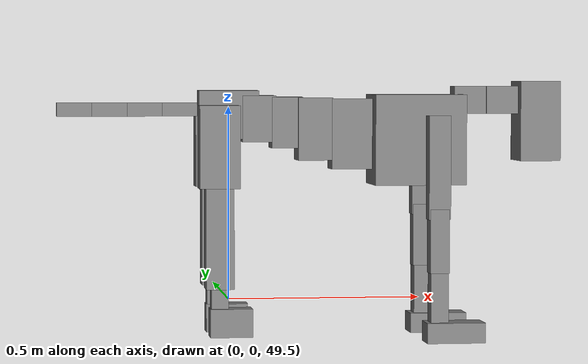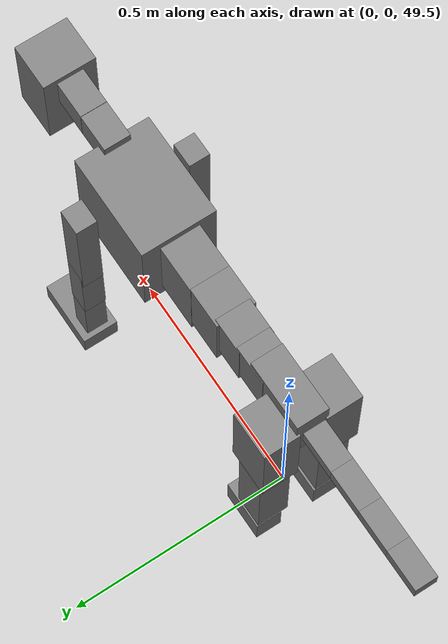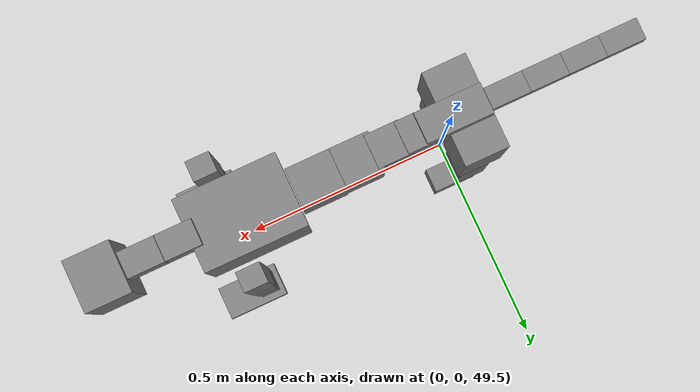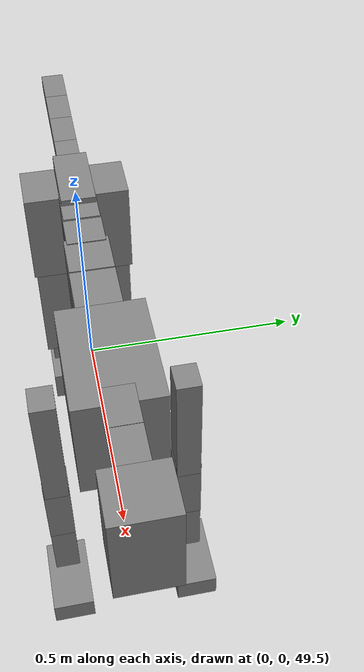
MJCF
<mujoco model="dog">

    <default>
        <joint armature="0.02" stiffness="1" damping="0.2" limited="true"/>
        <geom condim="3" friction="1 0.05 0.05" margin="0.01"/>
        <motor ctrllimited="true" ctrlrange="-1.0 1.0" forcelimited="true" gear="50"/>
    </default>

    <compiler inertiafromgeom="true" angle="radian"/>

    <option timestep="0.016" iterations="50" tolerance="1e-10" solver="Newton" jacobian="dense" cone="pyramidal"/>

    <size nconmax="20000" njmax="60000" nstack="5000000"/>
    <visual>
        <map force="0.1" zfar="30"/>
        <rgba haze="0.15 0.25 0.35 1"/>
        <quality shadowsize="2048"/>
        <global offwidth="800" offheight="800"/>
    </visual>

    <asset>
        <texture type="skybox" builtin="gradient" rgb1="0.3 0.5 0.7" rgb2="0 0 0" width="512" height="512"/>
        <texture name="texplane" type="2d" builtin="checker" rgb1=".2 .3 .4" rgb2=".1 0.15 0.2" width="512" height="512"
                 mark="cross" markrgb=".8 .8 .8"/>
        <texture name="texgeom" type="cube" builtin="flat" mark="cross" width="127" height="1278" rgb1="0.8 0.6 0.4"
                 rgb2="0.8 0.6 0.4" markrgb="1 1 1" random="0.01"/>

        <material name="matplane" reflectance="0.3" texture="texplane" texrepeat="1 1" texuniform="true"/>
        <material name="matgeom" texture="texgeom" texuniform="true" rgba="0.8 0.6 .4 1"/>
    </asset>

    <worldbody>
        <geom name="floor" pos="0 0 0" size="0 0 .25" type="plane" material="matplane" condim="3"/>

        <light directional="false" diffuse=".2 .2 .2" specular="0 0 0" pos="0 0 5" dir="0 0 -1" castshadow="false"/>
        <light mode="targetbodycom" target="torso" directional="false" diffuse=".8 .8 .8" specular="0.3 0.3 0.3"
               pos="0 0 4.0" dir="0 0 -1"/>

        <body name="root" pos="0 0 50">
            <freejoint name="root_1"/>
            <geom type="box" pos="0 0 -0.02" size="0.0774  0.0358  0.063" density="2030"/>

            <body name="spine1" pos="0.054 0 0">
                <joint name="spine1_y" axis="0 1 0" range="0 0.7" limited="true"/>
                <geom type="box" pos="0.02375 0 -0.03" size="0.04375  0.0375  0.05985" density="2030"/>

                <body name="spine2" pos="0.0612 0 0">
                    <joint name="spine2_y" axis="0 1 0" range="-0.15 0.15" limited="true"/>
                    <geom type="box" pos="0.03555  0  -0.04" size="0.04055  0.039  0.06615" density="2030"/>

                    <body name="spine3" pos="0.0730 0 0">
                        <joint name="spine3_y" axis="0 1 0" range="-0.15 0.15" limited="true"/>
                        <geom type="box" pos="0.03555  0  -0.057" size="0.04555  0.0445  0.081" density="2030"/>

                        <body name="spine4" pos="0.0780 0 0">
                            <joint name="spine4_y" axis="0 1 0" range="-0.15 0.15" limited="true"/>
                            <geom type="box" pos="0.05265  0  -0.07" size="0.05265  0.045  0.09135" density="2030"/>

                            <body name="torso" pos="0.1082 0 0">
                                <joint name="torso_y" axis="0 1 0" range="-0.15 0.15" limited="true"/>
                                <geom type="box" pos="0.11925  0  -0.085" size="0.11925  0.085  0.11745"
                                      density="2030"/>

                                <body name="neck1" pos="0.2160  0   0.0180">
                                    <joint name="neck1_y" axis="0 1 0" range="-1.2  -1" limited="true"/>
                                    <geom type="box" pos="0.0423  0  0" size="0.0423  0.03  0.036" density="2325"/>

                                    <body name="neck2" pos="0.0853  0  0">
                                        <joint name="neck2_y" axis="0 1 0" range="0.1  0" limited="true"/>
                                        <geom type="box" pos="0.0423  0  0" size="0.0423  0.03  0.036" density="2325"/>

                                        <body name="head" pos="0.0853  0  0">
                                            <joint name="head_y" axis="0 1 0" range="-0.3  -0.2" limited="true"/>
                                            <geom type="box" pos="0.0531  0  -0.055" size="0.0531  0.06  0.1044"
                                                  density="4030"/>

                                        </body>
                                    </body>
                                </body>

                                <body name="front_shoulder" pos="0.156  0   -0.0480">
                                    <joint name="front_shoulder_y" axis="0 1 0" range="-1 1.5" limited="true"/>
                                    <geom type="box" pos="0 0.13 -0.1067" size="0.0280  0.0239  0.1334" density="1158"/>
                                    <geom type="box" pos="0 -0.13 -0.1067" size="0.0280  0.0239  0.1334"
                                          density="1158"/>

                                    <body name="front_elbow" pos="0  0  -0.2135">
                                        <joint name="front_elbow_y" axis="0 1 0" range="-2 0" limited="true"/>
                                        <geom type="box" pos="0 0.13 -0.0821" size="0.0248  0.0253  0.0821"
                                              density="1081"/>
                                        <geom type="box" pos="0 -0.13 -0.0821" size="0.0248  0.0253  0.0821"
                                              density="1081"/>

                                        <body name="front_wrist" pos="0  0  -0.1643">
                                            <joint name="front_wrist_y" axis="0 1 0" range="-0.2 0" limited="true"/>
                                            <geom type="box" pos="0 0.13 -0.0710" size="0.0224  0.0249  0.0842"
                                                  density="1664"/>
                                            <geom type="box" pos="0 -0.13 -0.0710" size="0.0224  0.0249  0.0842"
                                                  density="1664"/>

                                            <body name="front_finger_end" pos="0  0  -0.1420">
                                                <joint name="front_finger_y" axis="0 1 0" range="-0.4 1"
                                                       limited="true"/>
                                                <geom type="box" pos="0.0411  0.13  -0.0111"
                                                      size="0.0754  0.0411  0.0261" density="1515"/>
                                                <geom type="box" pos="0.0411  -0.13  -0.0111"
                                                      size="0.0754  0.0411  0.0261" density="1515"/>

                                            </body>

                                        </body>
                                    </body>
                                </body>

                            </body>
                        </body>
                    </body>
                </body>
            </body>

            <body name="back_hip" pos="-0.03 0 -0.018">
                <joint name="back_hip_y" axis="0 1 0" range="-1.5 0.3" limited="true"/>
                <geom type="box" pos="0 0.07 -0.0836" size="0.0518  0.0406  0.1064" density="1154"/>
                <geom type="box" pos="0 -0.07 -0.0836" size="0.0518  0.0406  0.1064" density="1154"/>

                <body name="back_knee" pos="0  0  -0.1671">
                    <joint name="back_knee_y" axis="0 1 0" range="0 2.8" limited="true"/>
                    <geom type="box" pos="0 0.07 -0.1327" size="0.0360  0.0355  0.1483" density="1227"/>
                    <geom type="box" pos="0 -0.07 -0.1327" size="0.0360  0.0355  0.1483" density="1227"/>

                    <body name="back_ankle" pos="0  0  -0.2655">
                        <joint name="back_ankle_y" axis="0 1 0" range="-2.2 0" limited="true"/>
                        <geom type="box" pos="0 0.07 -0.0406" size="0.0220  0.0220  0.0519" density="1284"/>
                        <geom type="box" pos="0 -0.07 -0.0406" size="0.0220  0.0220  0.0519" density="1284"/>

                        <body name="back_toe_end" pos="0  0  -0.0813">
                            <joint name="back_toe_y" axis="0 1 0" range="-0.4 1" limited="true"/>
                            <geom type="box" pos="0.0297  0.07  -0.0216" size="0.0545  0.0297  0.0366" density="1515"/>
                            <geom type="box" pos="0.0297  -0.07  -0.0216" size="0.0545  0.0297  0.0366" density="1515"/>

                        </body>
                    </body>
                </body>
            </body>

            <body name="tail1" pos="-0.074 0 -0.006">
                <joint name="tail1_y" axis="0 1 0" range="-0.2 0.2" limited="true"/>
                <geom type="box" pos="-0.0536  0  0" size="0.045  0.025  0.0175" density="1587"/>

                <body name="tail2" pos="-0.09 0 0">
                    <joint name="tail2_y" axis="0 1 0" range="-0.2 0.2" limited="true"/>
                    <geom type="box" pos="-0.0536  0  0" size="0.045  0.025  0.0175" density="1587"/>

                    <body name="tail3" pos="-0.09 0 0">
                        <joint name="tail3_y" axis="0 1 0" range="-0.2 0.2" limited="true"/>
                        <geom type="box" pos="-0.0536  0  0" size="0.045  0.025  0.0175" density="1587"/>

                        <body name="tail4" pos="-0.09 0 0">
                            <joint name="tail4_y" axis="0 1 0" range="-0.2 0.2" limited="true"/>
                            <geom type="box" pos="-0.0536  0  0" size="0.045  0.025  0.0175" density="1587"/>

                        </body>
                    </body>
                </body>
            </body>
        </body>
    </worldbody>

    <actuator>
        <motor joint="spine1_y" forcerange="-150 150     "/>
        <motor joint="spine2_y" forcerange="-150 150     "/>
        <motor joint="spine3_y" forcerange="-150 150     "/>
        <motor joint="spine4_y" forcerange="-150 150     "/>
        <motor joint="torso_y" forcerange="-150 150     "/>
        <motor joint="neck1_y" forcerange="-100 100       "/>
        <motor joint="neck2_y" forcerange="-100 100       "/>
        <motor joint="head_y" forcerange="-150 150       "/>
        <motor joint="front_shoulder_y" forcerange="-143.29 116.08"/>
        <motor joint="front_elbow_y" forcerange="-122.25 161.99"/>
        <motor joint="front_wrist_y" forcerange="-143.90 55.36"/>
        <motor joint="front_finger_y" forcerange="-93.88 85.32"/>
        <motor joint="back_hip_y" forcerange="-398.37 343.47"/>
        <motor joint="back_knee_y" forcerange="-392.00 323.86"/>
        <motor joint="back_angle_y" forcerange="-189.61 62.72"/>
        <motor joint="back_toe_y" forcerange="-34.06 123.65"/>
        <motor joint="tail1_y" forcerange="-50 50     "/>
        <motor joint="tail2_y" forcerange="-50 50     "/>
        <motor joint="tail3_y" forcerange="-50 50     "/>
        <motor joint="tail4_y" forcerange="-50 50     "/>
    </actuator>
</mujoco>
